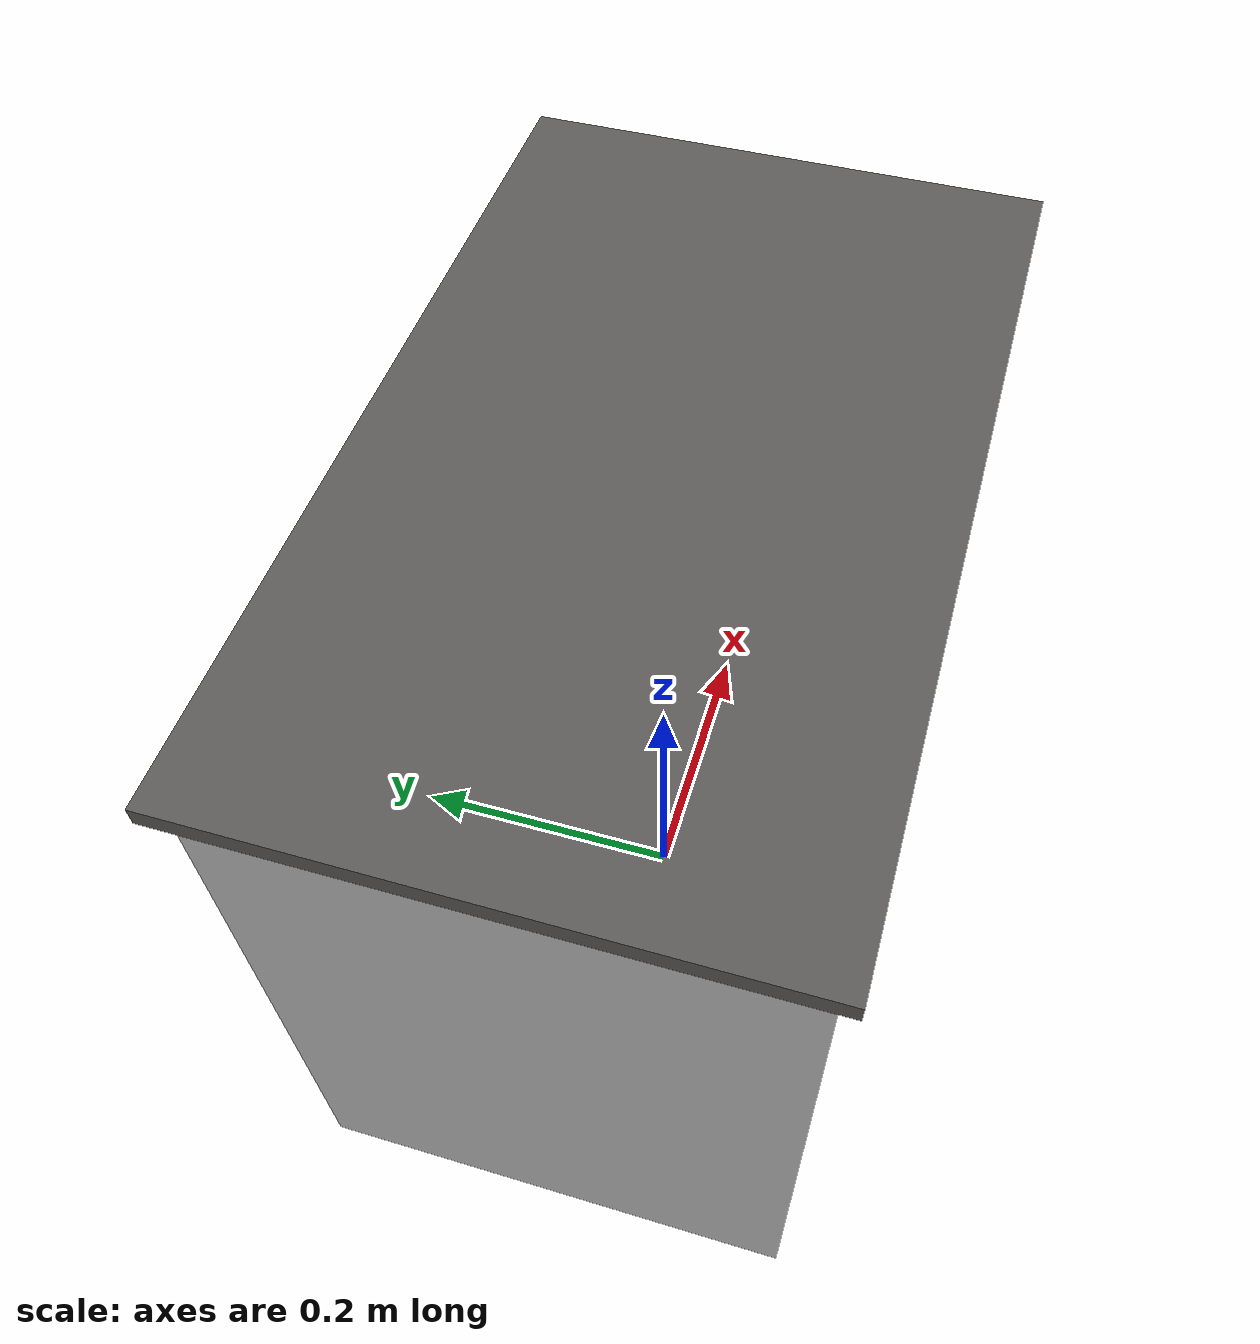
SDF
<?xml version="1.0"?>
<sdf version="1.7">
  <model name="bldg_b">
    <static>true</static>
    <link name="link">
<visual name="mass"><pose>0 0 0.2200 0 0 0</pose><geometry><box><size>0.550 0.320 0.440</size></box></geometry><material><script><uri>model://bldg_b/materials/scripts</uri><uri>model://bldg_b/materials/textures</uri><name>BldgFacade</name></script></material></visual>
      <collision name="mass_c_c"><pose>0 0 0.2200 0 0 0</pose><geometry><box><size>0.550 0.320 0.440</size></box></geometry></collision>
      <visual name="roof"><pose>0 0 0.4460 0 0 0</pose><geometry><box><size>0.570 0.340 0.012</size></box></geometry><material><ambient>0.35 0.34 0.33 1</ambient><diffuse>0.35 0.34 0.33 1</diffuse></material></visual>
      <visual name="door"><pose>0 -0.1620 0.0280 0 0 0</pose><geometry><box><size>0.035 0.004 0.055</size></box></geometry><material><ambient>0.25 0.22 0.20 1</ambient><diffuse>0.25 0.22 0.20 1</diffuse></material></visual>
    </link>
  </model>
</sdf>
